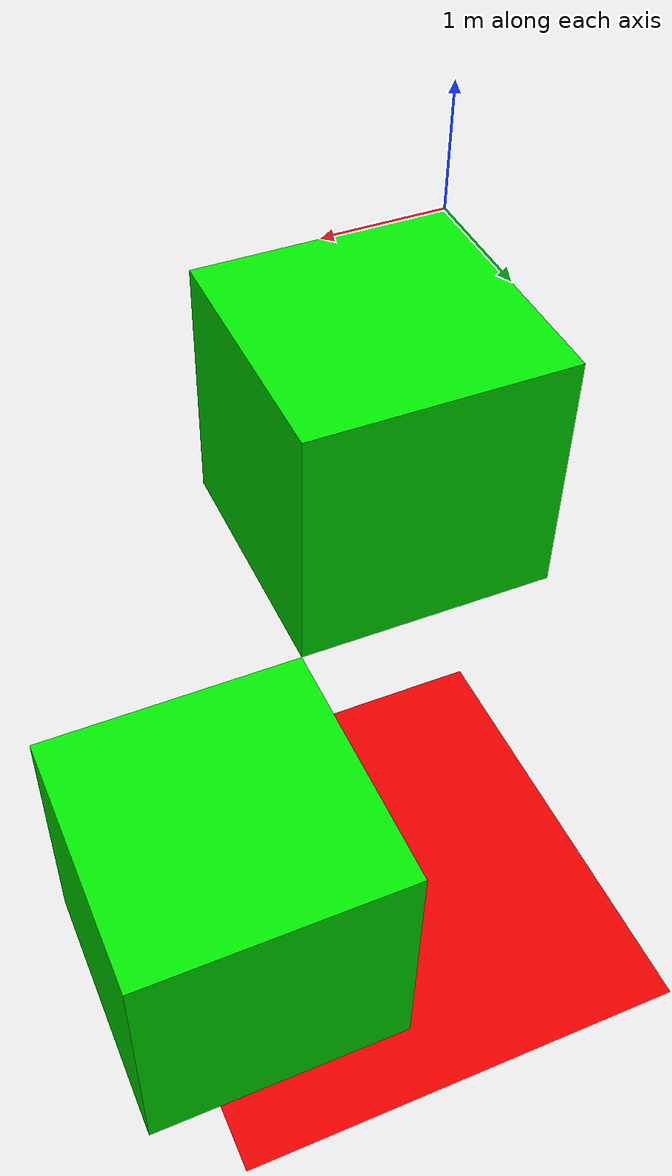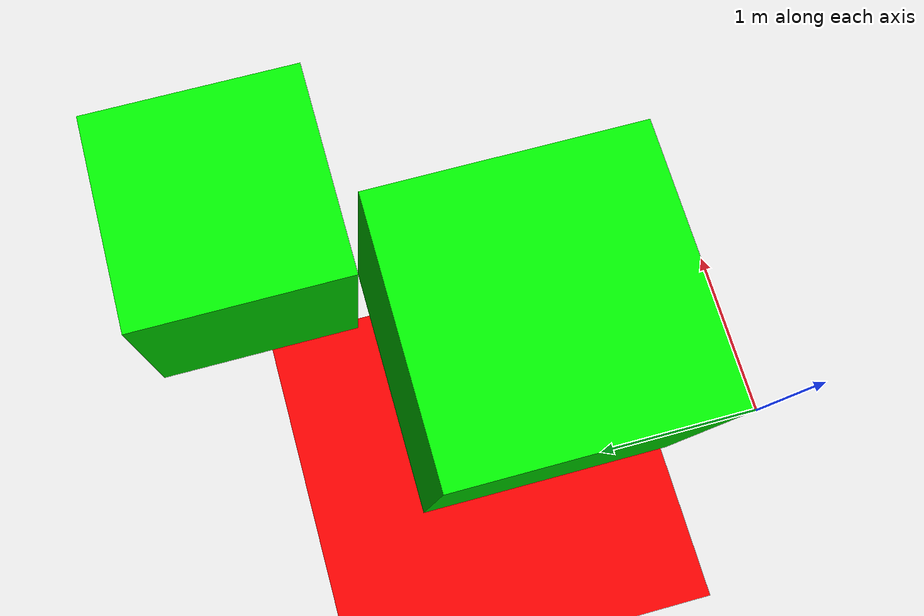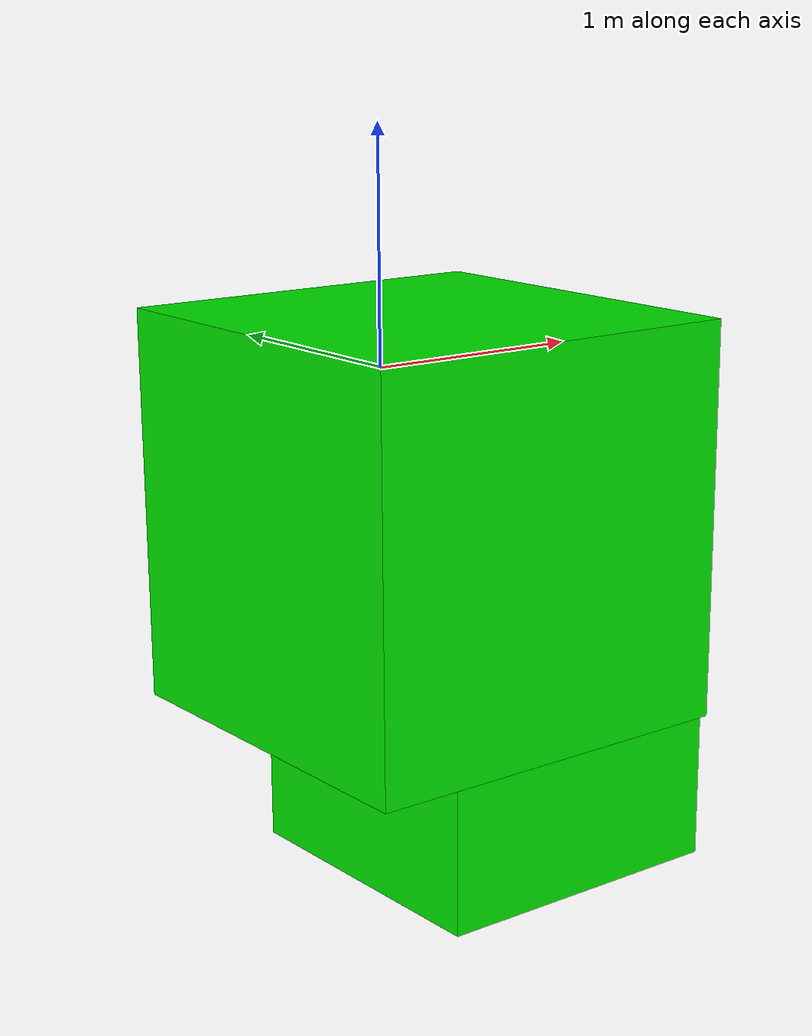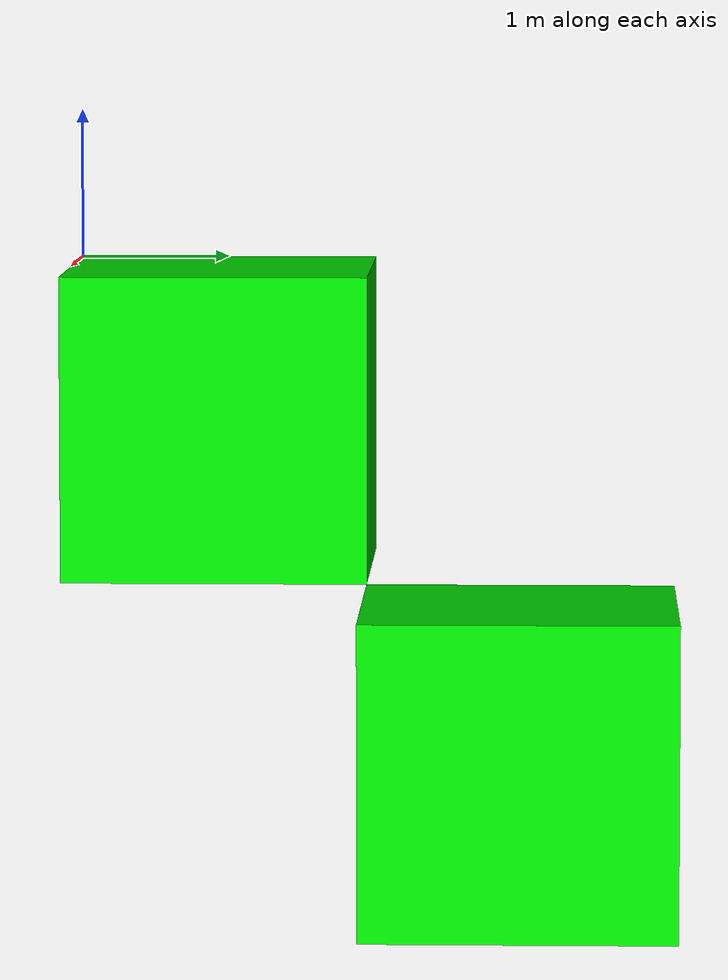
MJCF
<mujoco>
    <option timestep="0.02" integrator="RK4">
		<flag gravity="disable" energy="enable"/>
	</option>
    <worldbody>
        <light diffuse=".5 .5 .5" pos="0 0 3" dir="0 0 -1"/>
        <geom type="plane" pos="0 0 -8" size="3 3 0.1" rgba=".9 0 0 1"/>
        <body name="root" pos="1 1 -1" euler="0 0 0">
            <joint name="joint0" type="ball" pos="-1 -1 1"/>
            <geom name="box0" type="box" size="1 1 1" rgba="0 .9 0 1" mass="1"/>
                <body pos="2 2 -2" euler="0 0 0">
                    <joint name="joint1" type="ball" pos="-1 -1 1"/>
                    <geom name="box1" type="box" size="1 1 1" rgba="0 .9 0 1" mass="1"/>
                </body>
        </body>
    </worldbody>
    <sensor>
        <subtreeangmom  body="root"/>
        <subtreecom   body="root"/>
        <subtreelinvel   body="root"/>
    </sensor>
</mujoco>
